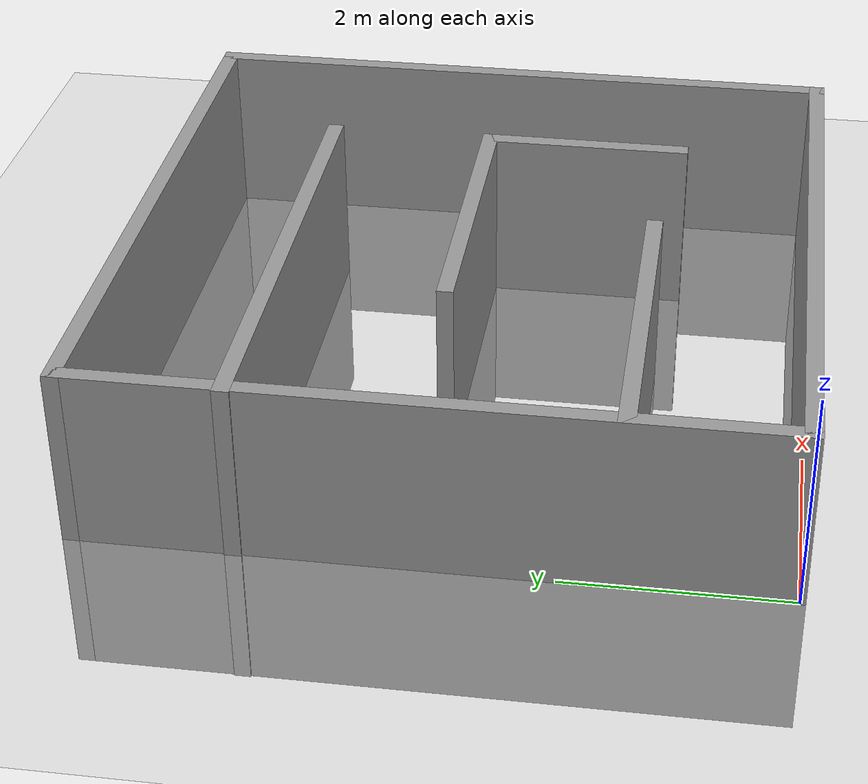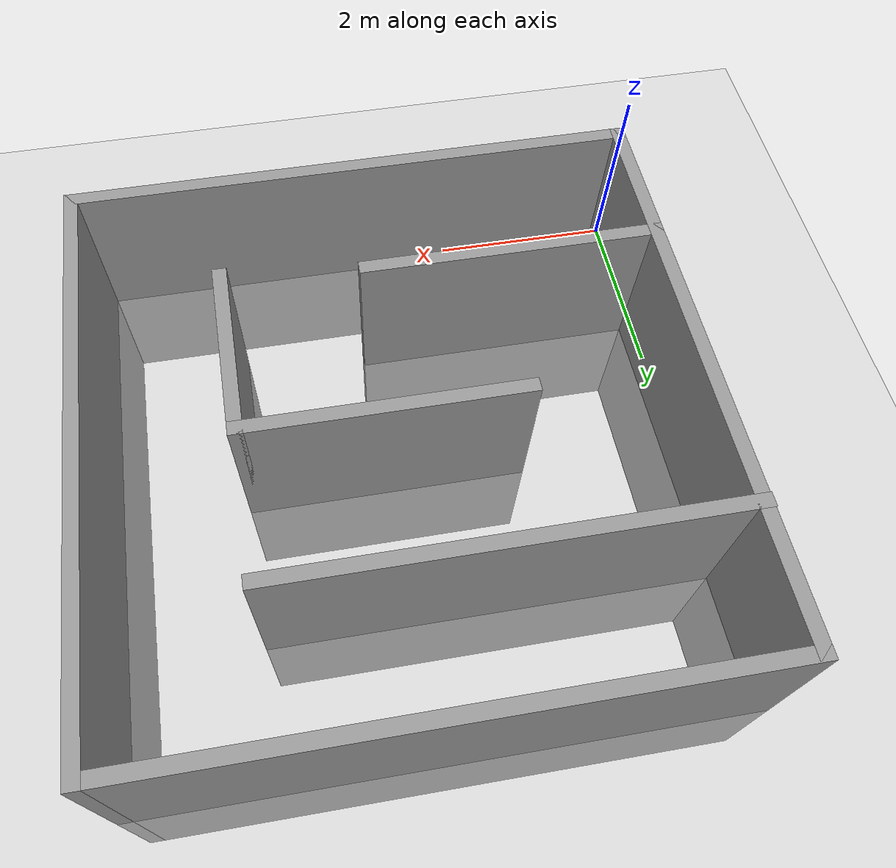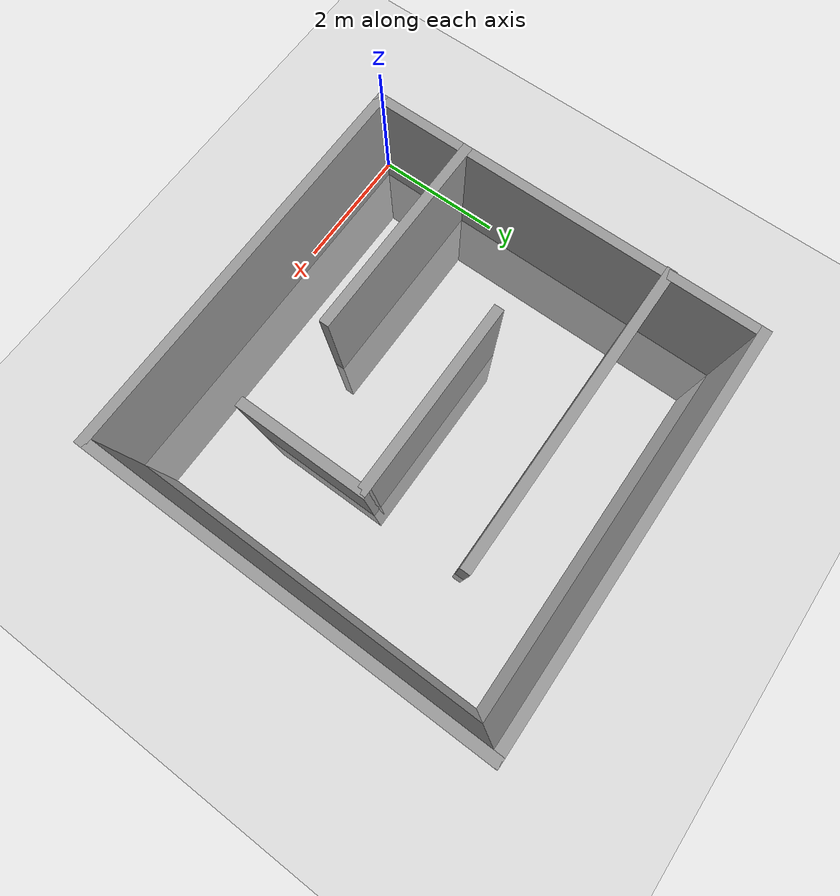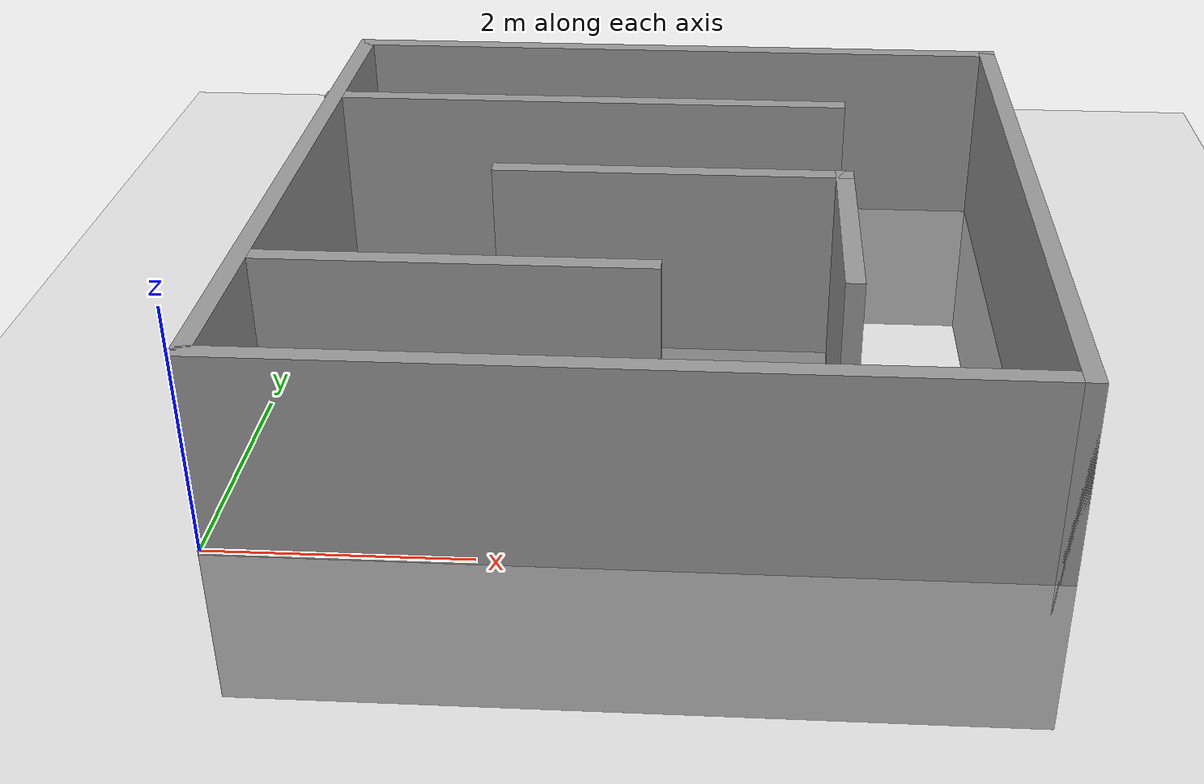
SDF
<sdf version="1.6">
 <world name="default">
  <light name="sun" type="directional">
   <pose>0 0 10 0 -0 0</pose>
   <diffuse>0.8 0.8 0.8 1</diffuse>
   <specular>0.2 0.2 0.2 1</specular>
   <attenuation>
    <range>1000</range>
    <constant>0.9</constant>
    <linear>0.01</linear>
    <quadratic>0.001</quadratic>
   </attenuation>
   <direction>-0.5 0.1 -0.9</direction>
  </light>
  <model name="ground_plane">
   <static>1</static>
   <link name="link">
    <collision name="collision">
     <geometry><plane><normal>0 0 1</normal><size>100 100</size></plane></geometry>
     <surface><friction><ode><mu>100</mu><mu2>50</mu2></ode></friction></surface>
    </collision>
    <visual name="visual">
     <cast_shadows>0</cast_shadows>
     <geometry><plane><normal>0 0 1</normal><size>100 100</size></plane></geometry>
     <material>
      <script><uri>file://media/materials/scripts/gazebo.material</uri><name>Gazebo/Grey</name></script>
     </material>
    </visual>
   </link>
  </model>
  <gravity>0 0 -9.8</gravity>
  <magnetic_field>6e-06 2.3e-05 -4.2e-05</magnetic_field>
  <atmosphere type="adiabatic"/>
  <physics name="default_physics" default="0" type="ode">
   <max_step_size>0.001</max_step_size>
   <real_time_factor>1</real_time_factor>
   <real_time_update_rate>1000</real_time_update_rate>
  </physics>
  <scene><ambient>0.4 0.4 0.4 1</ambient><background>0.7 0.7 0.7 1</background><shadows>1</shadows></scene>
  <audio><device>default</device></audio>
  <spherical_coordinates>
   <surface_model>EARTH_WGS84</surface_model>
   <latitude_deg>0</latitude_deg>
   <longitude_deg>0</longitude_deg>
   <elevation>0</elevation>
   <heading_deg>0</heading_deg>
  </spherical_coordinates>
  <model name="maze_simple">
   <pose>3.11452 3.08204 0 0 -0 0</pose>
   <link name="Wall_11">
    <collision name="Wall_11_Collision">
     <geometry><box><size>3 0.15 3</size></box></geometry>
     <pose>0 0 0.15 0 -0 0</pose>
    </collision>
    <visual name="Wall_11_Visual">
     <pose>0 0 0.15 0 -0 0</pose>
     <geometry><box><size>3 0.15 3</size></box></geometry>
     <material>
      <script><uri>file://media/materials/scripts/gazebo.material</uri><name>Gazebo/Grey</name></script>
      <ambient>1 1 1 1</ambient>
     </material>
     <meta><layer>0</layer></meta>
    </visual>
    <pose>0.12975 0.101 0 0 -0 0</pose>
   </link>
   <link name="Wall_12">
    <collision name="Wall_12_Collision">
     <geometry><box><size>2 0.15 3</size></box></geometry>
     <pose>0 0 0.15 0 -0 0</pose>
    </collision>
    <visual name="Wall_12_Visual">
     <pose>0 0 0.15 0 -0 0</pose>
     <geometry><box><size>2 0.15 3</size></box></geometry>
     <material>
      <script><uri>file://media/materials/scripts/gazebo.material</uri><name>Gazebo/Grey</name></script>
      <ambient>1 1 1 1</ambient>
     </material>
     <meta><layer>0</layer></meta>
    </visual>
    <pose>1.55475 -0.824 0 0 -0 -1.5708</pose>
   </link>
   <link name="Wall_16">
    <collision name="Wall_16_Collision">
     <geometry><box><size>4.75 0.15 3</size></box></geometry>
     <pose>0 0 0.15 0 -0 0</pose>
    </collision>
    <visual name="Wall_16_Visual">
     <pose>0 0 0.15 0 -0 0</pose>
     <geometry><box><size>4.75 0.15 3</size></box></geometry>
     <material>
      <script><uri>file://media/materials/scripts/gazebo.material</uri><name>Gazebo/Grey</name></script>
      <ambient>1 1 1 1</ambient>
     </material>
     <meta><layer>0</layer></meta>
    </visual>
    <pose>-0.75675 1.642 0 0 -0 0</pose>
   </link>
   <link name="Wall_4">
    <collision name="Wall_4_Collision">
     <geometry><box><size>6.25 0.15 3</size></box></geometry>
     <pose>0 0 0.15 0 -0 0</pose>
    </collision>
    <visual name="Wall_4_Visual">
     <pose>0 0 0.15 0 -0 0</pose>
     <geometry><box><size>6.25 0.15 3</size></box></geometry>
     <material>
      <script><uri>file://media/materials/scripts/gazebo.material</uri><name>Gazebo/Grey</name></script>
      <ambient>1 1 1 1</ambient>
     </material>
     <meta><layer>0</layer></meta>
    </visual>
    <pose>0.00675 -3.05 0 0 -0 0</pose>
   </link>
   <link name="Wall_5">
    <collision name="Wall_5_Collision">
     <geometry><box><size>6.25 0.15 3</size></box></geometry>
     <pose>0 0 0.15 0 -0 0</pose>
    </collision>
    <visual name="Wall_5_Visual">
     <pose>0 0 0.15 0 -0 0</pose>
     <geometry><box><size>6.25 0.15 3</size></box></geometry>
     <material>
      <script><uri>file://media/materials/scripts/gazebo.material</uri><name>Gazebo/Grey</name></script>
      <ambient>1 1 1 1</ambient>
     </material>
     <meta><layer>0</layer></meta>
    </visual>
    <pose>3.05675 -0 0 0 -0 1.5708</pose>
   </link>
   <link name="Wall_6">
    <collision name="Wall_6_Collision">
     <geometry><box><size>6.25 0.15 3</size></box></geometry>
     <pose>0 0 0.15 0 -0 0</pose>
    </collision>
    <visual name="Wall_6_Visual">
     <pose>0 0 0.15 0 -0 0</pose>
     <geometry><box><size>6.25 0.15 3</size></box></geometry>
     <material>
      <script><uri>file://media/materials/scripts/gazebo.material</uri><name>Gazebo/Grey</name></script>
      <ambient>1 1 1 1</ambient>
     </material>
     <meta><layer>0</layer></meta>
    </visual>
    <pose>0.00675 3.05 0 0 -0 3.14159</pose>
   </link>
   <link name="Wall_7">
    <collision name="Wall_7_Collision">
     <geometry><box><size>6.25 0.15 3</size></box></geometry>
     <pose>0 0 0.15 0 -0 0</pose>
    </collision>
    <visual name="Wall_7_Visual">
     <pose>0 0 0.15 0 -0 0</pose>
     <geometry><box><size>6.25 0.15 3</size></box></geometry>
     <material>
      <script><uri>file://media/materials/scripts/gazebo.material</uri><name>Gazebo/Grey</name></script>
      <ambient>1 1 1 1</ambient>
     </material>
     <meta><layer>0</layer></meta>
    </visual>
    <pose>-3.04325 -0 0 0 -0 -1.5708</pose>
   </link>
   <link name="Wall_9">
    <collision name="Wall_9_Collision">
     <geometry><box><size>3.25 0.15 3</size></box></geometry>
     <pose>0 0 0.15 0 -0 0</pose>
    </collision>
    <visual name="Wall_9_Visual">
     <pose>0 0 0.15 0 -0 0</pose>
     <geometry><box><size>3.25 0.15 3</size></box></geometry>
     <material>
      <script><uri>file://media/materials/scripts/gazebo.material</uri><name>Gazebo/Grey</name></script>
      <ambient>1 1 1 1</ambient>
     </material>
     <meta><layer>0</layer></meta>
    </visual>
    <pose>-1.49325 -1.601 0 0 -0 0</pose>
   </link>
   <static>1</static>
  </model>
 </world>
</sdf>
